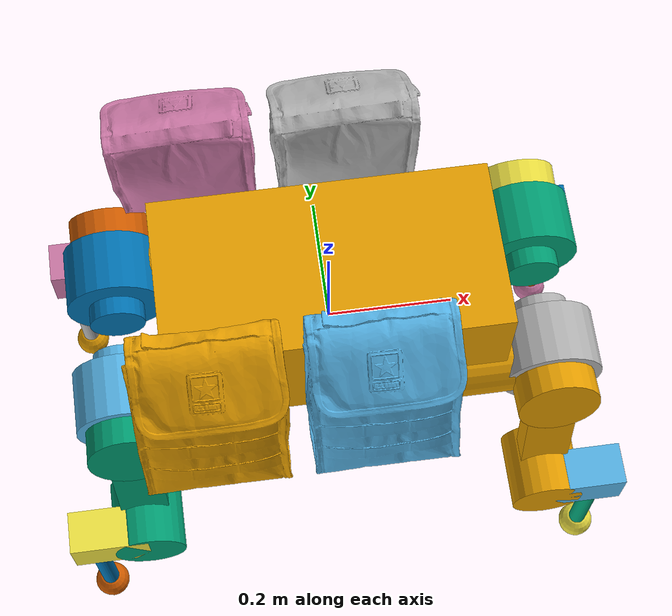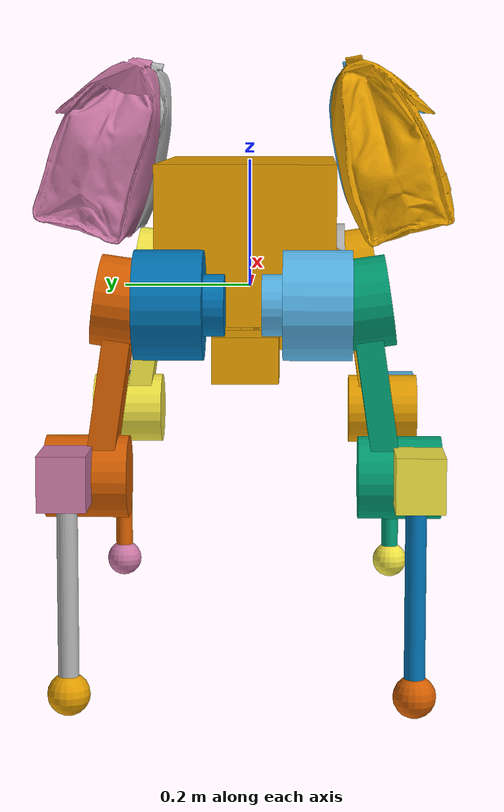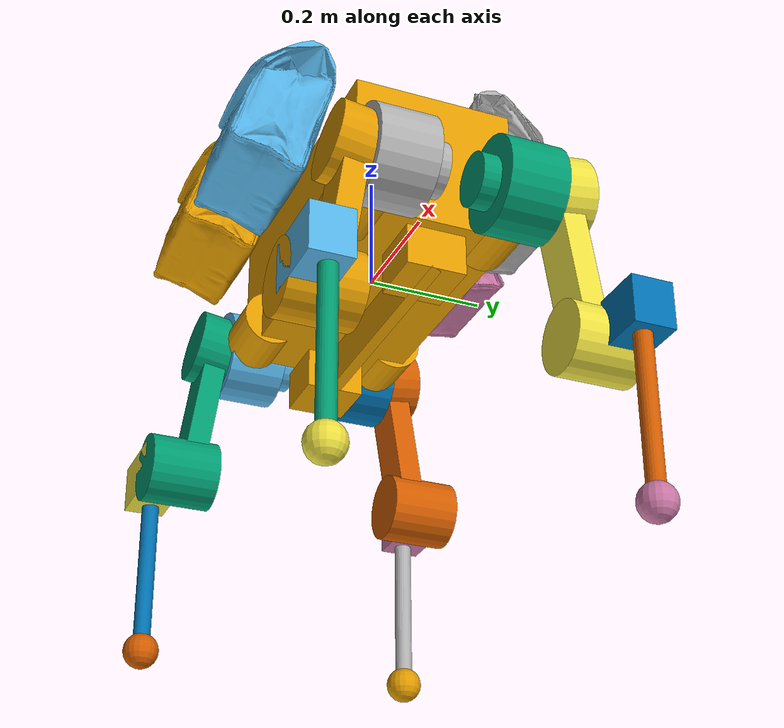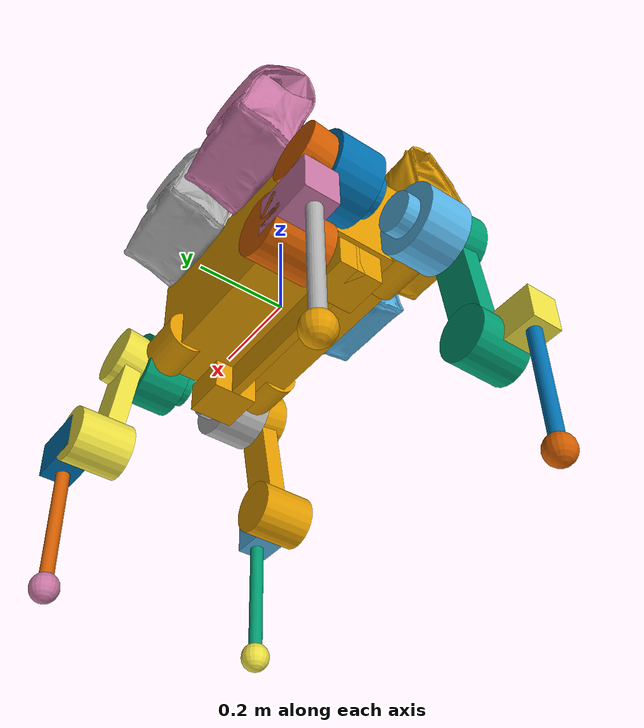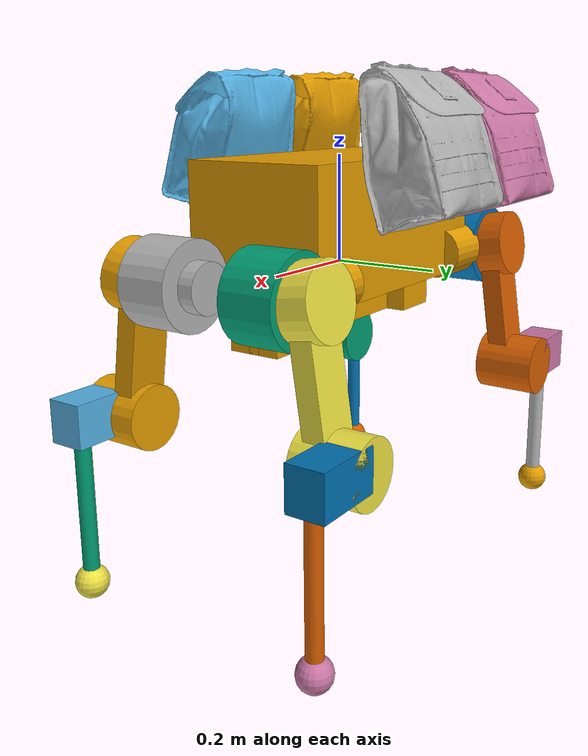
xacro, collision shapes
<?xml version="1.0" encoding="utf-8"?>
<!--   Copyright 2019 ANYbotics, https://www.anybotics.com                               -->
<!-- This file contains the description of the ANYmal B robot. -->
<robot name="anymal" xmlns:xacro="http://www.ros.org/wiki/xacro">

  <xacro:include filename="$(find champ_description)/urdf/anymal/anymal_macro.xacro" />
  <xacro:include filename="$(find champ_description)/urdf/anymal/anymal.ros2_control.xacro" />
  <xacro:include filename="$(find champ_description)/urdf/anymal/anymal.sensors.gazebo.xacro" />

  <!-- Parameters for ROS 2 control -->
  <xacro:arg name="add_ros2_control_tag" default="true" />
  <xacro:arg name="hardware_interface_type" default="gazebo" />
  <xacro:arg name="k_q_p" default="" />
  <xacro:arg name="k_qd_p" default="" />

  <!-- Load Anymal -->
  <xacro:load_anymal  />

  <!-- Adding the ROS 2 control tags -->
  <xacro:if value="$(arg add_ros2_control_tag)">
      <xacro:anymal_ros2_control interface_type="$(arg hardware_interface_type)"
                               k_q_p="$(arg k_q_p)"
                               k_qd_p="$(arg k_qd_p)" />
  </xacro:if>

  <!-- Gazebo plugins: pose publisher -->
  <xacro:anymal_pose_publisher />

  <!-- Add sacks to it -->
  <link name="sack_1">
            <visual>
                <geometry>
                    <mesh filename="file://$(find champ_description)/meshes/military_sack/model.obj" />
                </geometry>
            </visual>
            <collision>
                <geometry>
                    <mesh
                        filename="file://$(find champ_description)/meshes/military_sack/model.obj" />
                </geometry>
            </collision>
        </link>

  <link name="sack_2">
            <visual>
                <geometry>
                    <mesh filename="file://$(find champ_description)/meshes/military_sack/model.obj" />
                </geometry>
            </visual>
            <collision>
                <geometry>
                    <mesh
                        filename="file://$(find champ_description)/meshes/military_sack/model.obj" />
                </geometry>
            </collision>
        </link>

  <link name="sack_3">
            <visual>
                <geometry>
                    <mesh filename="file://$(find champ_description)/meshes/military_sack/model.obj" />
                </geometry>
            </visual>
            <collision>
                <geometry>
                    <mesh
                        filename="file://$(find champ_description)n/meshes/military_sack/model.obj" />
                </geometry>
            </collision>
        </link>

  <link name="sack_4">
            <visual>
                <geometry>
                    <mesh filename="file://$(find champ_description)/meshes/military_sack/model.obj" />
                </geometry>
            </visual>
            <collision>
                <geometry>
                    <mesh
                        filename="file://$(find champ_description)/meshes/military_sack/model.obj" />
                </geometry>
            </collision>
        </link>

        <joint name="joint_sack_1" type="fixed">
            <origin xyz="-0.20 0.25 0.10" rpy="-0.3 0 3.1416" />
            <parent link="base" />
            <child link="sack_1" />
        </joint>

        <joint name="joint_sack_2" type="fixed">
            <origin xyz="0.05 0.25 0.10" rpy="-0.3 0 3.1416" />
            <parent link="base" />
            <child link="sack_2" />
        </joint>

        <joint name="joint_sack_3" type="fixed">
            <origin xyz="-0.20 -0.25 0.10" rpy="-0.3 0 0" />
            <parent link="base" />
            <child link="sack_3" />
        </joint>

        <joint name="joint_sack_4" type="fixed">
            <origin xyz="0.05 -0.25 0.10" rpy="-0.3 0 0" />
            <parent link="base" />
            <child link="sack_4" />
        </joint>

</robot>

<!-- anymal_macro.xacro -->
<robot name="anymal" xmlns:xacro="http://www.ros.org/wiki/xacro">
    <xacro:macro name="load_anymal" params="
    feet:=false
    leg_damping:='0.0'
    leg_friction:='0.0'">
    <!-- 1.0, 0.2. First time it walked we used damping:=1.0 and friction:=0.2. Setting it back to zeros it was still walking -->

    <!-- Material for the visual primitives -->
    <material name="anymal_material">
        <color rgba="0.7 0.7 0.7 1.0" />
    </material>
    <!-- Base link -->
    <link name="base">
        <visual>
            <origin rpy="0 0 0" xyz="0 0 0" />
            <geometry>
                <mesh filename="file://$(find champ_description)/meshes/anymal/anymal_base.dae" scale="0.001 0.001 0.001" />
            </geometry>
        </visual>
        <collision>
            <!-- Main Body -->
            <origin rpy="0 0 0" xyz="0 0 0.08" />
            <geometry>
                <box size="0.531 0.27 0.24" />
            </geometry>
        </collision>
        <collision>
            <!-- HAA actuators -->
            <origin rpy="0 1.57079632679 0" xyz="0.227 0.116 0" />
            <geometry>
                <cylinder length="0.1" radius="0.05" />
            </geometry>
        </collision>
        <collision>
            <origin rpy="0 1.57079632679 0" xyz="0.227 -0.116 0" />
            <geometry>
                <cylinder length="0.1" radius="0.05" />
            </geometry>
        </collision>
        <collision>
            <origin rpy="0 1.57079632679 0" xyz="-0.227 0.116 0" />
            <geometry>
                <cylinder length="0.1" radius="0.05" />
            </geometry>
        </collision>
        <collision>
            <origin rpy="0 1.57079632679 0" xyz="-0.227 -0.116 0" />
            <geometry>
                <cylinder length="0.1" radius="0.05" />
            </geometry>
        </collision>
        <collision>
            <!-- Belly plate front bump -->
            <origin rpy="0 0 0" xyz="0.2155 0.0 -0.09" />
            <geometry>
                <box size="0.1 0.1 0.07" />
            </geometry>
        </collision>
        <collision>
            <!-- Belly plate hind bump-->
            <origin rpy="0 0 0" xyz="-0.2155 0.0 -0.09" />
            <geometry>
                <box size="0.1 0.1 0.07" />
            </geometry>
        </collision>
        <collision>
            <!-- Belly plate middle bump-->
            <origin rpy="0 0 0" xyz="0 0 -0.09" />
            <geometry>
                <box size="0.531 0.02 0.07" />
            </geometry>
        </collision>
    </link>
    <!-- Fixed joint to add dummy inertia link -->
    <joint name="base_to_base_inertia" type="fixed">
        <parent link="base" />
        <child link="base_inertia" />
        <origin rpy="0 0 0" xyz="0 0 0" />
    </joint>
    <!-- Dummy inertia link, because KDL cannot have inertia on the base link -->
    <link name="base_inertia">
        <inertial>
            <origin rpy="0 0 0" xyz="-0.001960558279 -0.001413217745 0.050207125344" />
            <mass value="16.793507758" />
            <inertia ixx="0.217391101503" ixy="-0.00132873239126" ixz="-0.00228200226173" iyy="0.639432546734" iyz="-0.00138078263145" izz="0.62414077654" />
        </inertial>
    </link>
    <link name="LF_HIP">
        <visual>
            <origin rpy="0 0 0.0" xyz="0 0 0" />
            <geometry>
                <mesh filename="file://$(find champ_description)/meshes/anymal/anymal_hip_l.dae" scale="0.001 0.001     0.001" />
            </geometry>
        </visual>
        <collision>
            <!-- Protector -->
            <origin rpy="1.57079632679 0 0" xyz="0.0635 -0.009 0.0" />
            <geometry>
                <cylinder length="0.1" radius="0.08" />
            </geometry>
        </collision>
        <collision>
            <!-- Heatfins -->
            <origin rpy="1.57079632679 0 0" xyz="0.0635 -0.074 0.0" />
            <geometry>
                <cylinder length="0.03" radius="0.045" />
            </geometry>
        </collision>
        <inertial>
            <origin rpy="0 0 0" xyz="0.064516258147 -0.003787101702 -0.000152184388" />
            <mass value="1.42462064" />
            <inertia ixx="0.00243023349564" ixy="-1.53023971e-05" ixz="-2.1819095354e-05" iyy="0.00230257239103" iyz="2.6473021273e-05" izz="0.0019806759227" />
        </inertial>
    </link>
    <!-- Hip joint -->
    <joint name="LF_HAA" type="revolute">
        <parent link="base" />
        <child link="LF_HIP" />
        <origin xyz="0.277 0.116 0.0" />
        <axis xyz="1 0 0" />
        <limit command_effort="40" current="10" effort="80" gear_velocity="10" lower="-9.42" upper="9.42" velocity="15" />
        <dynamics damping="0.0" friction="0.0" />
    </joint>
    <link name="LF_THIGH">
        <visual>
            <origin rpy="0 0 0.0" xyz="0 0 0" />
            <geometry>
                <mesh filename="file://$(find champ_description)/meshes/anymal/anymal_thigh_l.dae" scale="0.001 0.001     0.001" />
            </geometry>
        </visual>
        <collision>
            <!-- thigh with heat fins -->
            <origin rpy="0.145 0 0" xyz="0 0.035 -0.125" />
            <geometry>
                <box size="0.08 0.04 0.25" />
            </geometry>
        </collision>
        <collision>
            <!-- KFE actuator -->
            <origin rpy="1.57079632679 0 0" xyz="0.0 0.069 -0.25" />
            <geometry>
                <cylinder length="0.12" radius="0.06" />
            </geometry>
        </collision>
        <collision>
            <!-- upper protector -->
            <origin rpy="1.71579632679 0 0" xyz="0 -0.005 0" />
            <geometry>
                <cylinder length="0.12" radius="0.066" />
            </geometry>
        </collision>
        <inertial>
            <origin rpy="0 0 0" xyz="-0.003897968082 0.054226618537 -0.214583373795" />
            <mass value="1.634976467" />
            <inertia ixx="0.0120367944369" ixy="6.762065206e-05" ixz="0.000287806340448" iyy="0.0120643637939" iyz="-0.00140610131218" izz="0.00249422574881" />
        </inertial>
    </link>
    <!-- Thigh joint -->
    <joint name="LF_HFE" type="revolute">
        <parent link="LF_HIP" />
        <child link="LF_THIGH" />
        <origin xyz="0.0635                    0.041                    0.0" />
        <axis xyz="0 1 0" />
        <limit command_effort="40" current="10" effort="80" gear_velocity="10" lower="-9.42" upper="9.42" velocity="15.0" />
        <dynamics damping="0.0" friction="0.0" />
    </joint>
    <link name="LF_SHANK">
        <visual>
            <origin rpy="0 0 0.0" xyz="0 0 0" />
            <geometry>
                <mesh filename="file://$(find champ_description)/meshes/anymal/anymal_shank_l.dae" scale="0.001 0.001     0.001" />
            </geometry>
        </visual>
        <collision>
            <origin rpy="0 1.57079632679 0" xyz="0.065 -0.015 0.01" />
            <geometry>
                <box size="0.08 0.07 0.13" />
            </geometry>
        </collision>
        <inertial>
            <origin rpy="0 0 0" xyz="0.030816858139 -0.004617229294 0.000893125713" />
            <mass value="0.207204302" />
            <inertia ixx="0.0002104880248" ixy="-5.6750980345e-05" ixz="1.0127699391e-05" iyy="0.000676270210023" iyz="-8.22869024e-07" izz="0.000545032674924" />
        </inertial>
    </link>
    <!-- Shank joint -->
    <joint name="LF_KFE" type="revolute">
        <parent link="LF_THIGH" />
        <child link="LF_SHANK" />
        <origin xyz="0.0 0.109 -0.25" />
        <axis xyz="0 1 0" />
        <limit command_effort="40" current="10" effort="80" gear_velocity="10" lower="-9.42" upper="9.42" velocity="15.0" />
        <dynamics damping="0.0" friction="0.0" />
    </joint>
    <!-- Shank to Adapter joint -->
    <joint name="LF_SHANK_TO_ADAPTER" type="fixed">
        <parent link="LF_SHANK" />
        <child link="LF_ADAPTER" />
        <origin rpy="0.0 0.0 0.0" xyz="0.1 -0.02 0.0" />
    </joint>
    <!-- Adapter link -->
    <link name="LF_ADAPTER">
        <visual>
            <origin rpy="0 0 0.0" xyz="0 0 0.032" />
            <geometry>
                <mesh filename="file://$(find champ_description)/meshes/anymal/anymal_foot.dae" scale="0.001 0.001     0.001" />
            </geometry>
        </visual>
        <collision>
            <origin rpy="0 0 0" xyz="0 0 -0.160625" />
            <geometry>
                <cylinder length="0.32125" radius="0.015" />
            </geometry>
        </collision>
        <inertial>
            <origin rpy="0 0 0" xyz="-8.66e-10 -1.472e-09 -0.244345749188" />
            <mass value="0.140170767" />
            <inertia ixx="0.00159938741862" ixy="-9.32e-13" ixz="1.039e-11" iyy="0.00159938741932" iyz="1.7563e-11" izz="5.4423177329e-05" />
        </inertial>
    </link>
    <!-- Adapter to Foot joint -->
    <joint name="LF_ADAPTER_TO_FOOT" type="fixed">
        <parent link="LF_ADAPTER" />
        <child link="LF_FOOT" />
        <origin rpy="0.0 0.0 0.0" xyz="0.0 0.0 -0.32125" />
    </joint>
    <!-- Foot link -->
    <link name="LF_FOOT">
        <collision>
            <origin xyz="0 0 0.02325" />
            <geometry>
                <sphere radius="0.031" />
            </geometry>
        </collision>
    </link>
    <!-- Gazebo customization -->
    <gazebo reference="LF_FOOT">
        <kp>1000000.0</kp>
        <kd>100.0</kd>
        <mu1>0.8</mu1>
        <mu2>0.8</mu2>
    </gazebo>
    <link name="RF_HIP">
        <visual>
            <origin rpy="0 0 0.0" xyz="0 0 0" />
            <geometry>
                <mesh filename="file://$(find champ_description)/meshes/anymal/anymal_hip_r.dae" scale="0.001 0.001     0.001" />
            </geometry>
        </visual>
        <collision>
            <!-- Protector -->
            <origin rpy="1.57079632679 0 0" xyz="0.0635 0.009 0.0" />
            <geometry>
                <cylinder length="0.1" radius="0.08" />
            </geometry>
        </collision>
        <collision>
            <!-- Heatfins -->
            <origin rpy="1.57079632679 0 0" xyz="0.0635 0.074 0.0" />
            <geometry>
                <cylinder length="0.03" radius="0.045" />
            </geometry>
        </collision>
        <inertial>
            <origin rpy="0 0 0" xyz="0.064516258147 0.003787101702 -0.000152184388" />
            <mass value="1.42462064" />
            <inertia ixx="0.00243023349564" ixy="1.53023971e-05" ixz="-2.1819095354e-05" iyy="0.00230257239103" iyz="-2.6473021273e-05" izz="0.0019806759227" />
        </inertial>
    </link>
    <!-- Hip joint -->
    <joint name="RF_HAA" type="revolute">
        <parent link="base" />
        <child link="RF_HIP" />
        <origin xyz="0.277 -0.116 0.0" />
        <axis xyz="1 0 0" />
        <limit command_effort="40" current="10" effort="80" gear_velocity="10" lower="-9.42" upper="9.42" velocity="15" />
        <dynamics damping="0.0" friction="0.0" />
    </joint>
    <link name="RF_THIGH">
        <visual>
            <origin rpy="0 0 0.0" xyz="0 0 0" />
            <geometry>
                <mesh filename="file://$(find champ_description)/meshes/anymal/anymal_thigh_r.dae" scale="0.001 0.001     0.001" />
            </geometry>
        </visual>
        <collision>
            <!-- thigh with heat fins -->
            <origin rpy="-0.145 0 0" xyz="0 -0.035 -0.125" />
            <geometry>
                <box size="0.08 0.04 0.25" />
            </geometry>
        </collision>
        <collision>
            <!-- KFE actuator -->
            <origin rpy="1.57079632679 0 0" xyz="0.0 -0.069 -0.25" />
            <geometry>
                <cylinder length="0.12" radius="0.06" />
            </geometry>
        </collision>
        <collision>
            <!-- upper protector -->
            <origin rpy="-1.71579632679 0 0" xyz="0 0.005 0" />
            <geometry>
                <cylinder length="0.12" radius="0.066" />
            </geometry>
        </collision>
        <inertial>
            <origin rpy="0 0 0" xyz="-0.003897968082 -0.054226618537 -0.214583373795" />
            <mass value="1.634976467" />
            <inertia ixx="0.0120367944369" ixy="-6.762065206e-05" ixz="0.000287806340448" iyy="0.0120643637939" iyz="0.00140610131218" izz="0.00249422574881" />
        </inertial>
    </link>
    <!-- Thigh joint -->
    <joint name="RF_HFE" type="revolute">
        <parent link="RF_HIP" />
        <child link="RF_THIGH" />
        <origin xyz="0.0635                    -0.041                    0.0" />
        <axis xyz="0 1 0" />
        <limit command_effort="40" current="10" effort="80" gear_velocity="10" lower="-9.42" upper="9.42" velocity="15.0" />
        <dynamics damping="0.0" friction="0.0" />
    </joint>
    <link name="RF_SHANK">
        <visual>
            <origin rpy="0 0 0.0" xyz="0 0 0" />
            <geometry>
                <mesh filename="file://$(find champ_description)/meshes/anymal/anymal_shank_r.dae" scale="0.001 0.001     0.001" />
            </geometry>
        </visual>
        <collision>
            <origin rpy="0 1.57079632679 0" xyz="0.065 0.015 0.01" />
            <geometry>
                <box size="0.08 0.07 0.13" />
            </geometry>
        </collision>
        <inertial>
            <origin rpy="0 0 0" xyz="0.030816858139 0.004617229294 0.000893125713" />
            <mass value="0.207204302" />
            <inertia ixx="0.0002104880248" ixy="5.6750980345e-05" ixz="1.0127699391e-05" iyy="0.000676270210023" iyz="8.22869024e-07" izz="0.000545032674924" />
        </inertial>
    </link>
    <!-- Shank joint -->
    <joint name="RF_KFE" type="revolute">
        <parent link="RF_THIGH" />
        <child link="RF_SHANK" />
        <origin xyz="0.0 -0.109 -0.25" />
        <axis xyz="0 1 0" />
        <limit command_effort="40" current="10" effort="80" gear_velocity="10" lower="-9.42" upper="9.42" velocity="15.0" />
        <dynamics damping="0.0" friction="0.0" />
    </joint>
    <!-- Shank to Adapter joint -->
    <joint name="RF_SHANK_TO_ADAPTER" type="fixed">
        <parent link="RF_SHANK" />
        <child link="RF_ADAPTER" />
        <origin rpy="-0.0 0.0 -0.0" xyz="0.1 0.02 0.0" />
    </joint>
    <!-- Adapter link -->
    <link name="RF_ADAPTER">
        <visual>
            <origin rpy="0 0 0.0" xyz="0 0 0.032" />
            <geometry>
                <mesh filename="file://$(find champ_description)/meshes/anymal/anymal_foot.dae" scale="0.001 0.001     0.001" />
            </geometry>
        </visual>
        <collision>
            <origin rpy="0 0 0" xyz="0 0 -0.160625" />
            <geometry>
                <cylinder length="0.32125" radius="0.015" />
            </geometry>
            <material name="anymal_material" />
        </collision>
        <inertial>
            <origin rpy="0 0 0" xyz="-8.66e-10 -1.472e-09 -0.244345749188" />
            <mass value="0.140170767" />
            <inertia ixx="0.00159938741862" ixy="-9.32e-13" ixz="1.039e-11" iyy="0.00159938741932" iyz="1.7563e-11" izz="5.4423177329e-05" />
        </inertial>
    </link>
    <!-- Adapter to Foot joint -->
    <joint name="RF_ADAPTER_TO_FOOT" type="fixed">
        <parent link="RF_ADAPTER" />
        <child link="RF_FOOT" />
        <origin rpy="-0.0 0.0 -0.0" xyz="0.0 -0.0 -0.32125" />
    </joint>
    <!-- Foot link -->
    <link name="RF_FOOT">
        <collision>
            <origin xyz="0 0 0.02325" />
            <geometry>
                <sphere radius="0.031" />
            </geometry>
        </collision>
    </link>
    <!-- Gazebo customization -->
    <gazebo reference="RF_FOOT">
        <kp>1000000.0</kp>
        <kd>100.0</kd>
        <mu1>0.8</mu1>
        <mu2>0.8</mu2>
    </gazebo>
    <link name="LH_HIP">
        <visual>
            <origin rpy="0 0 -3.14159265359" xyz="0 0 0" />
            <geometry>
                <mesh filename="file://$(find champ_description)/meshes/anymal/anymal_hip_r.dae" scale="0.001 0.001     0.001" />
            </geometry>
        </visual>
        <collision>
            <!-- Protector -->
            <origin rpy="-1.57079632679 0 0" xyz="-0.0635 -0.009 0.0" />
            <geometry>
                <cylinder length="0.1" radius="0.08" />
            </geometry>
        </collision>
        <collision>
            <!-- Heatfins -->
            <origin rpy="-1.57079632679 0 0" xyz="-0.0635 -0.074 0.0" />
            <geometry>
                <cylinder length="0.03" radius="0.045" />
            </geometry>
        </collision>
        <inertial>
            <origin rpy="0 0 0" xyz="-0.064516258147 -0.003787101702 -0.000152184388" />
            <mass value="1.42462064" />
            <inertia ixx="0.00243023349564" ixy="1.53023971e-05" ixz="2.1819095354e-05" iyy="0.00230257239103" iyz="2.6473021273e-05" izz="0.0019806759227" />
        </inertial>
    </link>
    <!-- Hip joint -->
    <joint name="LH_HAA" type="revolute">
        <parent link="base" />
        <child link="LH_HIP" />
        <origin xyz="-0.277 0.116 0.0" />
        <axis xyz="1 0 0" />
        <limit command_effort="40" current="10" effort="80" gear_velocity="10" lower="-9.42" upper="9.42" velocity="15" />
        <dynamics damping="0.0" friction="0.0" />
    </joint>
    <link name="LH_THIGH">
        <visual>
            <origin rpy="0 0 -3.14159265359" xyz="0 0 0" />
            <geometry>
                <mesh filename="file://$(find champ_description)/meshes/anymal/anymal_thigh_r.dae" scale="0.001 0.001     0.001" />
            </geometry>
        </visual>
        <collision>
            <!-- thigh with heat fins -->
            <origin rpy="0.145 0 0" xyz="0 0.035 -0.125" />
            <geometry>
                <box size="0.08 0.04 0.25" />
            </geometry>
        </collision>
        <collision>
            <!-- KFE actuator -->
            <origin rpy="1.57079632679 0 0" xyz="0.0 0.069 -0.25" />
            <geometry>
                <cylinder length="0.12" radius="0.06" />
            </geometry>
        </collision>
        <collision>
            <!-- upper protector -->
            <origin rpy="1.71579632679 0 0" xyz="0 -0.005 0" />
            <geometry>
                <cylinder length="0.12" radius="0.066" />
            </geometry>
        </collision>
        <inertial>
            <origin rpy="0 0 0" xyz="0.003897968082 0.054226618537 -0.214583373795" />
            <mass value="1.634976467" />
            <inertia ixx="0.0120367944369" ixy="-6.762065206e-05" ixz="-0.000287806340448" iyy="0.0120643637939" iyz="-0.00140610131218" izz="0.00249422574881" />
        </inertial>
    </link>
    <!-- Thigh joint -->
    <joint name="LH_HFE" type="revolute">
        <parent link="LH_HIP" />
        <child link="LH_THIGH" />
        <origin xyz="-0.0635                    0.041                    0.0" />
        <axis xyz="0 1 0" />
        <limit command_effort="40" current="10" effort="80" gear_velocity="10" lower="-9.42" upper="9.42" velocity="15.0" />
        <dynamics damping="0.0" friction="0.0" />
    </joint>
    <link name="LH_SHANK">
        <visual>
            <origin rpy="0 0 -3.14159265359" xyz="0 0 0" />
            <geometry>
                <mesh filename="file://$(find champ_description)/meshes/anymal/anymal_shank_r.dae" scale="0.001 0.001     0.001" />
            </geometry>
        </visual>
        <collision>
            <origin rpy="0 1.57079632679 0" xyz="-0.065 -0.015 0.01" />
            <geometry>
                <box size="0.08 0.07 0.13" />
            </geometry>
        </collision>
        <inertial>
            <origin rpy="0 0 0" xyz="-0.030816858139 -0.004617229294 0.000893125713" />
            <mass value="0.207204302" />
            <inertia ixx="0.0002104880248" ixy="5.6750980345e-05" ixz="-1.0127699391e-05" iyy="0.000676270210023" iyz="-8.22869024e-07" izz="0.000545032674924" />
        </inertial>
    </link>
    <!-- Shank joint -->
    <joint name="LH_KFE" type="revolute">
        <parent link="LH_THIGH" />
        <child link="LH_SHANK" />
        <origin xyz="-0.0 0.109 -0.25" />
        <axis xyz="0 1 0" />
        <limit command_effort="40" current="10" effort="80" gear_velocity="10" lower="-9.42" upper="9.42" velocity="15.0" />
        <dynamics damping="0.0" friction="0.0" />
    </joint>
    <!-- Shank to Adapter joint -->
    <joint name="LH_SHANK_TO_ADAPTER" type="fixed">
        <parent link="LH_SHANK" />
        <child link="LH_ADAPTER" />
        <origin rpy="0.0 -0.0 -0.0" xyz="-0.1 -0.02 0.0" />
    </joint>
    <!-- Adapter link -->
    <link name="LH_ADAPTER">
        <visual>
            <origin rpy="0 0 -3.14159265359" xyz="0 0 0.032" />
            <geometry>
                <mesh filename="file://$(find champ_description)/meshes/anymal/anymal_foot.dae" scale="0.001 0.001     0.001" />
            </geometry>
        </visual>
        <collision>
            <origin rpy="0 0 0" xyz="0 0 -0.160625" />
            <geometry>
                <cylinder length="0.32125" radius="0.015" />
            </geometry>
        </collision>
        <inertial>
            <origin rpy="0 0 0" xyz="-8.66e-10 -1.472e-09 -0.244345749188" />
            <mass value="0.140170767" />
            <inertia ixx="0.00159938741862" ixy="-9.32e-13" ixz="1.039e-11" iyy="0.00159938741932" iyz="1.7563e-11" izz="5.4423177329e-05" />
        </inertial>
    </link>
    <!-- Adapter to Foot joint -->
    <joint name="LH_ADAPTER_TO_FOOT" type="fixed">
        <parent link="LH_ADAPTER" />
        <child link="LH_FOOT" />
        <origin rpy="0.0 -0.0 -0.0" xyz="-0.0 0.0 -0.32125" />
    </joint>
    <!-- Foot link -->
    <link name="LH_FOOT">
        <collision>
            <origin xyz="0 0 0.02325" />
            <geometry>
                <sphere radius="0.031" />
            </geometry>
        </collision>
    </link>
    <!-- Gazebo customization -->
    <gazebo reference="LH_FOOT">
        <kp>1000000.0</kp>
        <kd>100.0</kd>
        <mu1>0.8</mu1>
        <mu2>0.8</mu2>
    </gazebo>
    <link name="RH_HIP">
        <visual>
            <origin rpy="0 0 -3.14159265359" xyz="0 0 0" />
            <geometry>
                <mesh filename="file://$(find champ_description)/meshes/anymal/anymal_hip_l.dae" scale="0.001 0.001     0.001" />
            </geometry>
        </visual>
        <collision>
            <!-- Protector -->
            <origin rpy="-1.57079632679 0 0" xyz="-0.0635 0.009 0.0" />
            <geometry>
                <cylinder length="0.1" radius="0.08" />
            </geometry>
        </collision>
        <collision>
            <!-- Heatfins -->
            <origin rpy="-1.57079632679 0 0" xyz="-0.0635 0.074 0.0" />
            <geometry>
                <cylinder length="0.03" radius="0.045" />
            </geometry>
        </collision>
        <inertial>
            <origin rpy="0 0 0" xyz="-0.064516258147 0.003787101702 -0.000152184388" />
            <mass value="1.42462064" />
            <inertia ixx="0.00243023349564" ixy="-1.53023971e-05" ixz="2.1819095354e-05" iyy="0.00230257239103" iyz="-2.6473021273e-05" izz="0.0019806759227" />
        </inertial>
    </link>
    <!-- Hip joint -->
    <joint name="RH_HAA" type="revolute">
        <parent link="base" />
        <child link="RH_HIP" />
        <origin xyz="-0.277 -0.116 0.0" />
        <axis xyz="1 0 0" />
        <limit command_effort="40" current="10" effort="80" gear_velocity="10" lower="-9.42" upper="9.42" velocity="15" />
        <dynamics damping="0.0" friction="0.0" />
    </joint>
    <link name="RH_THIGH">
        <visual>
            <origin rpy="0 0 -3.14159265359" xyz="0 0 0" />
            <geometry>
                <mesh filename="file://$(find champ_description)/meshes/anymal/anymal_thigh_l.dae" scale="0.001 0.001     0.001" />
            </geometry>
        </visual>
        <collision>
            <!-- thigh with heat fins -->
            <origin rpy="-0.145 0 0" xyz="0 -0.035 -0.125" />
            <geometry>
                <box size="0.08 0.04 0.25" />
            </geometry>
        </collision>
        <collision>
            <!-- KFE actuator -->
            <origin rpy="1.57079632679 0 0" xyz="0.0 -0.069 -0.25" />
            <geometry>
                <cylinder length="0.12" radius="0.06" />
            </geometry>
        </collision>
        <collision>
            <!-- upper protector -->
            <origin rpy="-1.71579632679 0 0" xyz="0 0.005 0" />
            <geometry>
                <cylinder length="0.12" radius="0.066" />
            </geometry>
        </collision>
        <inertial>
            <origin rpy="0 0 0" xyz="0.003897968082 -0.054226618537 -0.214583373795" />
            <mass value="1.634976467" />
            <inertia ixx="0.0120367944369" ixy="6.762065206e-05" ixz="-0.000287806340448" iyy="0.0120643637939" iyz="0.00140610131218" izz="0.00249422574881" />
        </inertial>
    </link>
    <!-- Thigh joint -->
    <joint name="RH_HFE" type="revolute">
        <parent link="RH_HIP" />
        <child link="RH_THIGH" />
        <origin xyz="-0.0635                    -0.041                    0.0" />
        <axis xyz="0 1 0" />
        <limit command_effort="40" current="10" effort="80" gear_velocity="10" lower="-9.42" upper="9.42" velocity="15.0" />
        <dynamics damping="0.0" friction="0.0" />
    </joint>
    <link name="RH_SHANK">
        <visual>
            <origin rpy="0 0 -3.14159265359" xyz="0 0 0" />
            <geometry>
                <mesh filename="file://$(find champ_description)/meshes/anymal/anymal_shank_l.dae" scale="0.001 0.001     0.001" />
            </geometry>
        </visual>
        <collision>
            <origin rpy="0 1.57079632679 0" xyz="-0.065 0.015 0.01" />
            <geometry>
                <box size="0.08 0.07 0.13" />
            </geometry>
        </collision>
        <inertial>
            <origin rpy="0 0 0" xyz="-0.030816858139 0.004617229294 0.000893125713" />
            <mass value="0.207204302" />
            <inertia ixx="0.0002104880248" ixy="-5.6750980345e-05" ixz="-1.0127699391e-05" iyy="0.000676270210023" iyz="8.22869024e-07" izz="0.000545032674924" />
        </inertial>
    </link>
    <!-- Shank joint -->
    <joint name="RH_KFE" type="revolute">
        <parent link="RH_THIGH" />
        <child link="RH_SHANK" />
        <origin xyz="-0.0 -0.109 -0.25" />
        <axis xyz="0 1 0" />
        <limit command_effort="40" current="10" effort="80" gear_velocity="10" lower="-9.42" upper="9.42" velocity="15.0" />
        <dynamics damping="0.0" friction="0.0" />
    </joint>
    <!-- Shank to Adapter joint -->
    <joint name="RH_SHANK_TO_ADAPTER" type="fixed">
        <parent link="RH_SHANK" />
        <child link="RH_ADAPTER" />
        <origin rpy="-0.0 -0.0 0.0" xyz="-0.1 0.02 0.0" />
    </joint>
    <!-- Adapter link -->
    <link name="RH_ADAPTER">
        <visual>
            <origin rpy="0 0 -3.14159265359" xyz="0 0 0.032" />
            <geometry>
                <mesh filename="file://$(find champ_description)/meshes/anymal/anymal_foot.dae" scale="0.001 0.001     0.001" />
            </geometry>
        </visual>
        <collision>
            <origin rpy="0 0 0" xyz="0 0 -0.160625" />
            <geometry>
                <cylinder length="0.32125" radius="0.015" />
            </geometry>
        </collision>
        <inertial>
            <origin rpy="0 0 0" xyz="-8.66e-10 -1.472e-09 -0.244345749188" />
            <mass value="0.140170767" />
            <inertia ixx="0.00159938741862" ixy="-9.32e-13" ixz="1.039e-11" iyy="0.00159938741932" iyz="1.7563e-11" izz="5.4423177329e-05" />
        </inertial>
    </link>
    <!-- Adapter to Foot joint -->
    <joint name="RH_ADAPTER_TO_FOOT" type="fixed">
        <parent link="RH_ADAPTER" />
        <child link="RH_FOOT" />
        <origin rpy="-0.0 -0.0 0.0" xyz="-0.0 -0.0 -0.32125" />
    </joint>
    <!-- Foot link -->
    <link name="RH_FOOT">
        <collision>
            <origin xyz="0 0 0.02325" />
            <geometry>
                <sphere radius="0.031" />
            </geometry>
        </collision>
    </link>
    <!-- Gazebo customization -->
    <gazebo reference="RH_FOOT">
        <kp>1000000.0</kp>
        <kd>100.0</kd>
        <mu1>0.8</mu1>
        <mu2>0.8</mu2>
    </gazebo>

    </xacro:macro>
</robot>
